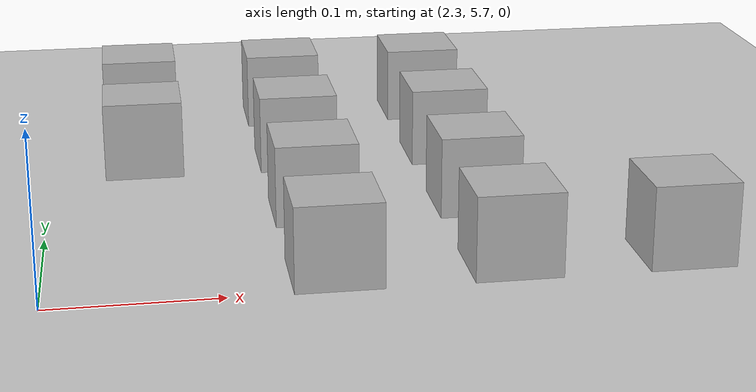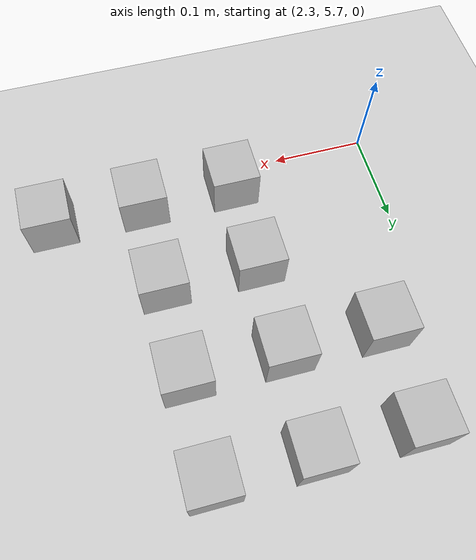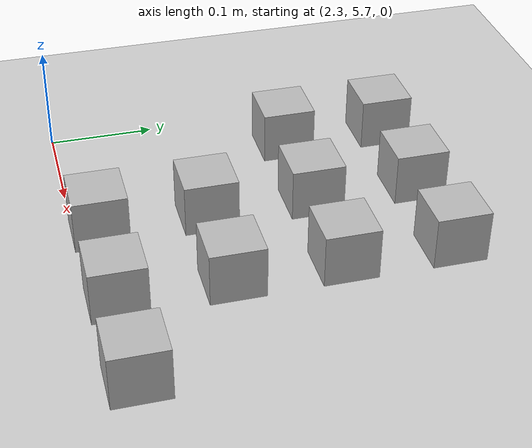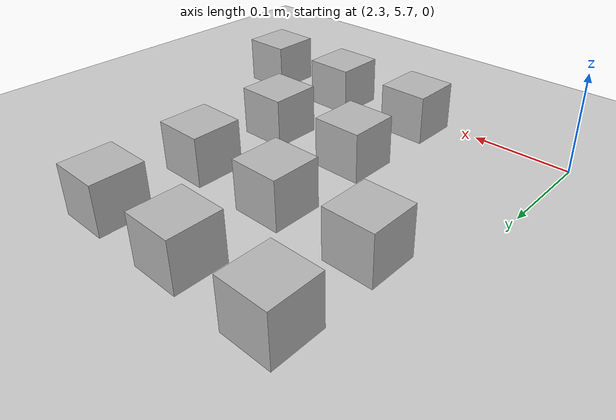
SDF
<sdf version="1.6">
 <world name="default">
  <model name="ground_plane">
   <static>1</static>
   <link name="link">
    <collision name="collision">
     <geometry><plane><normal>0 0 1</normal><size>100 100</size></plane></geometry>
     <surface><friction><ode><mu>100</mu><mu2>50</mu2></ode></friction></surface>
    </collision>
    <visual name="visual">
     <cast_shadows>0</cast_shadows>
     <geometry><plane><normal>0 0 1</normal><size>100 100</size></plane></geometry>
     <material>
      <script><uri>file://media/materials/scripts/gazebo.material</uri><name>Gazebo/Grey</name></script>
     </material>
    </visual>
   </link>
  </model>
  <model name="at1">
   <static>0</static>
   <link name="link">
    <inertial>
     <mass>0.01</mass>
     <inertia><ixx>4e-05</ixx><ixy>0</ixy><ixz>0</ixz><iyy>4e-05</iyy><iyz>0</iyz><izz>4e-05</izz></inertia>
    </inertial>
    <visual name="visual">
     <geometry><box><size>0.05 0.05 0.05</size></box></geometry>
     <material>
      <script>
       <uri>model://at0/materials/scripts</uri>
       <uri>model://at0/materials/textures</uri>
       <name>at0/Diffuse</name>
      </script>
     </material>
    </visual>
    <collision name="collision">
     <geometry><box><size>0.05 0.05 0.05</size></box></geometry>
     <surface><friction><ode><mu>0.8</mu><mu2>0.7</mu2></ode></friction></surface>
    </collision>
   </link>
   <pose>2.4606 5.72392 0.025 0 -0 0</pose>
  </model>
  <model name="at2">
   <static>0</static>
   <link name="link">
    <inertial>
     <mass>0.01</mass>
     <inertia><ixx>4e-05</ixx><ixy>0</ixy><ixz>0</ixz><iyy>4e-05</iyy><iyz>0</iyz><izz>4e-05</izz></inertia>
    </inertial>
    <visual name="visual">
     <geometry><box><size>0.05 0.05 0.05</size></box></geometry>
     <material>
      <script>
       <uri>model://at0/materials/scripts</uri>
       <uri>model://at0/materials/textures</uri>
       <name>at0/Diffuse</name>
      </script>
     </material>
    </visual>
    <collision name="collision">
     <geometry><box><size>0.05 0.05 0.05</size></box></geometry>
     <surface><friction><ode><mu>0.8</mu><mu2>0.7</mu2></ode></friction></surface>
    </collision>
   </link>
   <pose>2.5606 5.72392 0.025 0 -0 0</pose>
  </model>
  <model name="at3">
   <static>0</static>
   <link name="link">
    <inertial>
     <mass>0.01</mass>
     <inertia><ixx>4e-05</ixx><ixy>0</ixy><ixz>0</ixz><iyy>4e-05</iyy><iyz>0</iyz><izz>4e-05</izz></inertia>
    </inertial>
    <visual name="visual">
     <geometry><box><size>0.05 0.05 0.05</size></box></geometry>
     <material>
      <script>
       <uri>model://at0/materials/scripts</uri>
       <uri>model://at0/materials/textures</uri>
       <name>at0/Diffuse</name>
      </script>
     </material>
    </visual>
    <collision name="collision">
     <geometry><box><size>0.05 0.05 0.05</size></box></geometry>
     <surface><friction><ode><mu>0.8</mu><mu2>0.7</mu2></ode></friction></surface>
    </collision>
   </link>
   <pose>2.6606 5.72392 0.025 0 -0 0</pose>
  </model>
  <model name="at9">
   <static>0</static>
   <link name="link">
    <inertial>
     <mass>0.01</mass>
     <inertia><ixx>4e-05</ixx><ixy>0</ixy><ixz>0</ixz><iyy>4e-05</iyy><iyz>0</iyz><izz>4e-05</izz></inertia>
    </inertial>
    <visual name="visual">
     <geometry><box><size>0.05 0.05 0.05</size></box></geometry>
     <material>
      <script>
       <uri>model://at0/materials/scripts</uri>
       <uri>model://at0/materials/textures</uri>
       <name>at0/Diffuse</name>
      </script>
     </material>
    </visual>
    <collision name="collision">
     <geometry><box><size>0.05 0.05 0.05</size></box></geometry>
     <surface><friction><ode><mu>0.8</mu><mu2>0.7</mu2></ode></friction></surface>
    </collision>
   </link>
   <pose>2.4606 5.82392 0.025 0 -0 0</pose>
  </model>
  <model name="at10">
   <static>0</static>
   <link name="link">
    <inertial>
     <mass>0.01</mass>
     <inertia><ixx>4e-05</ixx><ixy>0</ixy><ixz>0</ixz><iyy>4e-05</iyy><iyz>0</iyz><izz>4e-05</izz></inertia>
    </inertial>
    <visual name="visual">
     <geometry><box><size>0.05 0.05 0.05</size></box></geometry>
     <material>
      <script>
       <uri>model://at0/materials/scripts</uri>
       <uri>model://at0/materials/textures</uri>
       <name>at0/Diffuse</name>
      </script>
     </material>
    </visual>
    <collision name="collision">
     <geometry><box><size>0.05 0.05 0.05</size></box></geometry>
     <surface><friction><ode><mu>0.8</mu><mu2>0.7</mu2></ode></friction></surface>
    </collision>
   </link>
   <pose>2.5606 5.82392 0.025 0 -0 0</pose>
  </model>
  <model name="at16">
   <static>0</static>
   <link name="link">
    <inertial>
     <mass>0.01</mass>
     <inertia><ixx>4e-05</ixx><ixy>0</ixy><ixz>0</ixz><iyy>4e-05</iyy><iyz>0</iyz><izz>4e-05</izz></inertia>
    </inertial>
    <visual name="visual">
     <geometry><box><size>0.05 0.05 0.05</size></box></geometry>
     <material>
      <script>
       <uri>model://at0/materials/scripts</uri>
       <uri>model://at0/materials/textures</uri>
       <name>at0/Diffuse</name>
      </script>
     </material>
    </visual>
    <collision name="collision">
     <geometry><box><size>0.05 0.05 0.05</size></box></geometry>
     <surface><friction><ode><mu>0.8</mu><mu2>0.7</mu2></ode></friction></surface>
    </collision>
   </link>
   <pose>2.3606 5.92392 0.025 0 -0 0</pose>
  </model>
  <model name="at17">
   <static>0</static>
   <link name="link">
    <inertial>
     <mass>0.01</mass>
     <inertia><ixx>4e-05</ixx><ixy>0</ixy><ixz>0</ixz><iyy>4e-05</iyy><iyz>0</iyz><izz>4e-05</izz></inertia>
    </inertial>
    <visual name="visual">
     <geometry><box><size>0.05 0.05 0.05</size></box></geometry>
     <material>
      <script>
       <uri>model://at0/materials/scripts</uri>
       <uri>model://at0/materials/textures</uri>
       <name>at0/Diffuse</name>
      </script>
     </material>
    </visual>
    <collision name="collision">
     <geometry><box><size>0.05 0.05 0.05</size></box></geometry>
     <surface><friction><ode><mu>0.8</mu><mu2>0.7</mu2></ode></friction></surface>
    </collision>
   </link>
   <pose>2.4606 5.92392 0.025 0 -0 0</pose>
  </model>
  <model name="at18">
   <static>0</static>
   <link name="link">
    <inertial>
     <mass>0.01</mass>
     <inertia><ixx>4e-05</ixx><ixy>0</ixy><ixz>0</ixz><iyy>4e-05</iyy><iyz>0</iyz><izz>4e-05</izz></inertia>
    </inertial>
    <visual name="visual">
     <geometry><box><size>0.05 0.05 0.05</size></box></geometry>
     <material>
      <script>
       <uri>model://at0/materials/scripts</uri>
       <uri>model://at0/materials/textures</uri>
       <name>at0/Diffuse</name>
      </script>
     </material>
    </visual>
    <collision name="collision">
     <geometry><box><size>0.05 0.05 0.05</size></box></geometry>
     <surface><friction><ode><mu>0.8</mu><mu2>0.7</mu2></ode></friction></surface>
    </collision>
   </link>
   <pose>2.5606 5.92392 0.025 0 -0 0</pose>
  </model>
  <model name="at24">
   <static>0</static>
   <link name="link">
    <inertial>
     <mass>0.01</mass>
     <inertia><ixx>4e-05</ixx><ixy>0</ixy><ixz>0</ixz><iyy>4e-05</iyy><iyz>0</iyz><izz>4e-05</izz></inertia>
    </inertial>
    <visual name="visual">
     <geometry><box><size>0.05 0.05 0.05</size></box></geometry>
     <material>
      <script>
       <uri>model://at0/materials/scripts</uri>
       <uri>model://at0/materials/textures</uri>
       <name>at0/Diffuse</name>
      </script>
     </material>
    </visual>
    <collision name="collision">
     <geometry><box><size>0.05 0.05 0.05</size></box></geometry>
     <surface><friction><ode><mu>0.8</mu><mu2>0.7</mu2></ode></friction></surface>
    </collision>
   </link>
   <pose>2.3606 6.02392 0.025 0 -0 0</pose>
  </model>
  <model name="at25">
   <static>0</static>
   <link name="link">
    <inertial>
     <mass>0.01</mass>
     <inertia><ixx>4e-05</ixx><ixy>0</ixy><ixz>0</ixz><iyy>4e-05</iyy><iyz>0</iyz><izz>4e-05</izz></inertia>
    </inertial>
    <visual name="visual">
     <geometry><box><size>0.05 0.05 0.05</size></box></geometry>
     <material>
      <script>
       <uri>model://at0/materials/scripts</uri>
       <uri>model://at0/materials/textures</uri>
       <name>at0/Diffuse</name>
      </script>
     </material>
    </visual>
    <collision name="collision">
     <geometry><box><size>0.05 0.05 0.05</size></box></geometry>
     <surface><friction><ode><mu>0.8</mu><mu2>0.7</mu2></ode></friction></surface>
    </collision>
   </link>
   <pose>2.4606 6.02392 0.025 0 -0 0</pose>
  </model>
  <model name="at26">
   <static>0</static>
   <link name="link">
    <inertial>
     <mass>0.01</mass>
     <inertia><ixx>4e-05</ixx><ixy>0</ixy><ixz>0</ixz><iyy>4e-05</iyy><iyz>0</iyz><izz>4e-05</izz></inertia>
    </inertial>
    <visual name="visual">
     <geometry><box><size>0.05 0.05 0.05</size></box></geometry>
     <material>
      <script>
       <uri>model://at0/materials/scripts</uri>
       <uri>model://at0/materials/textures</uri>
       <name>at0/Diffuse</name>
      </script>
     </material>
    </visual>
    <collision name="collision">
     <geometry><box><size>0.05 0.05 0.05</size></box></geometry>
     <surface><friction><ode><mu>0.8</mu><mu2>0.7</mu2></ode></friction></surface>
    </collision>
   </link>
   <pose>2.5606 6.02392 0.025 0 -0 0</pose>
  </model>
 </world>
</sdf>
